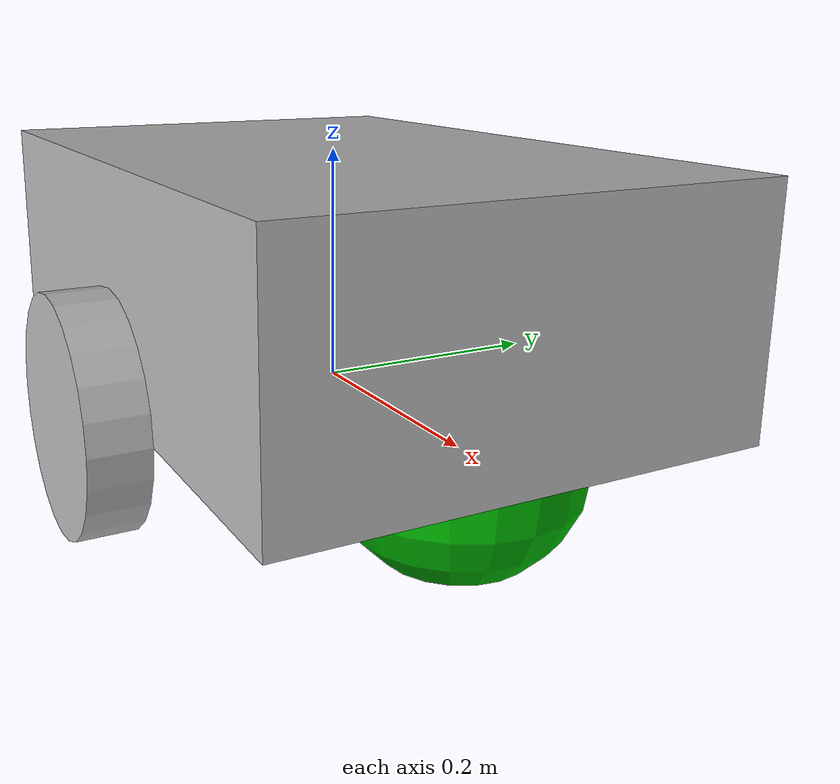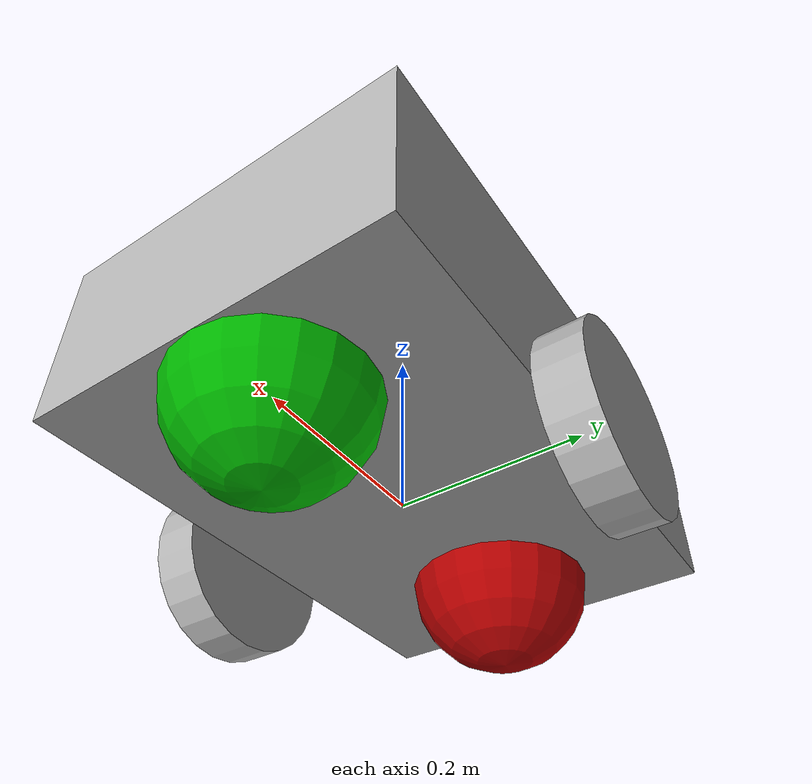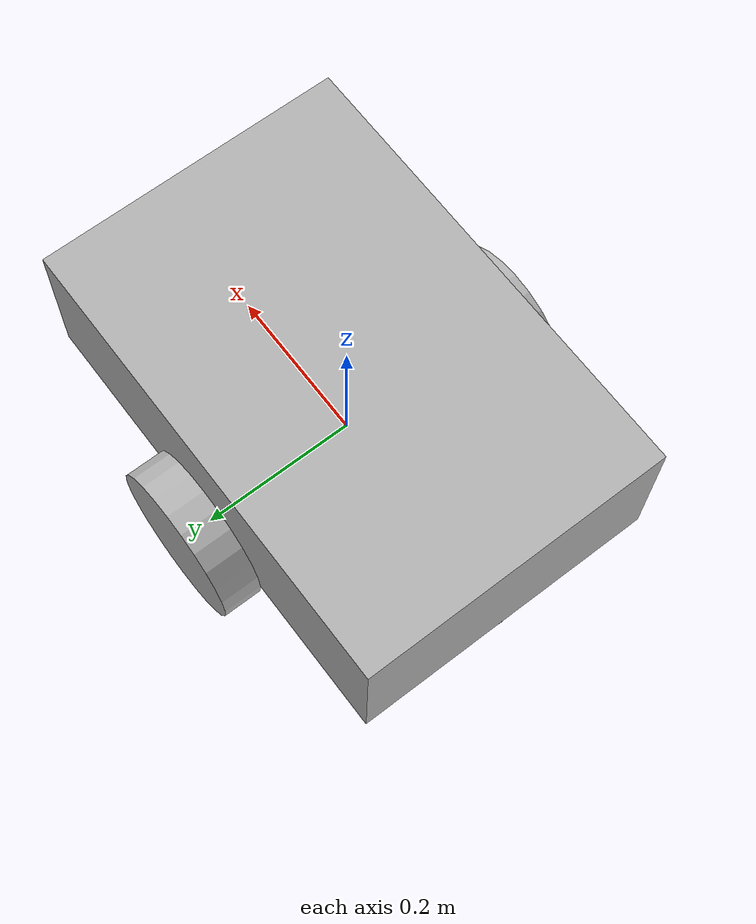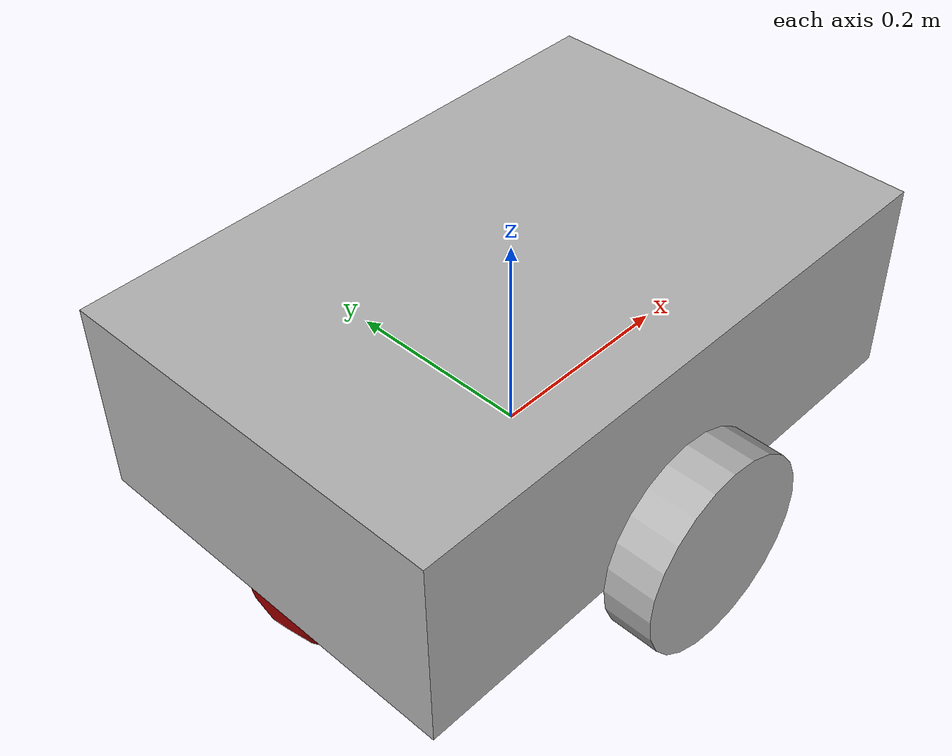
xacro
<?xml version="1.0"?>
<robot xmlns:xacro="http://www.ros.org/wiki/xacro">

    <xacro:include filename="inertial_macros.xacro"/>

    <material name="grey">
        <color rgba="0.7 0.7 0.7 1"/>
    </material>

    <material name="green">
        <color rgba="0 0.7 0 1"/>
    </material>

    <material name="white">
        <color rgba="1 1 1 1"/>
    </material>

    <material name="black">
        <color rgba="0 0 0 1"/>
    </material>

    <material name="red">
        <color rgba="0.7 0 0 1"/>
    </material>

    <link name="base_link">

    </link>

    <link name="chassis_link">
         <visual>
            <geometry>
                <box size="0.6 0.4 0.2"/>
            </geometry>
            <origin xyz = "0 0 0.1" rpy="0 0 0" />
            <material name="grey"/>
        </visual>

        <collision>
            <geometry>
                <box size="0.6 0.4 0.2"/>
            </geometry>
            <origin xyz = "0 0 0.1" rpy="0 0 0" />
        </collision>

        <xacro:inertial_box mass="3.0" x = "0.6" y = "0.4" z = "0.2">
            <origin xyz="0 0 0.1 " rpy ="0 0 0"/>
        </xacro:inertial_box>
    </link>

      <link name ="left_wheel">
        <visual>
            <geometry>
                <cylinder radius="0.1" length="0.05"/>
            </geometry>
            <origin xyz="0 0 0" rpy="1.57 0 0"/>
            <material name="grey"/>
        </visual>

        <collision>
            <geometry>
                <sphere radius="0.1"/>
            </geometry>
            <origin xyz="0 0 0" rpy="1.57 0 0"/>

        </collision>

         <xacro:inertial_cylinder mass="0.05" length="0.05" radius="1.0">
            <origin xyz="0 0 0 " rpy ="0 0 0"/>
        </xacro:inertial_cylinder>

    </link>

    <link name ="right_wheel">
        <visual>
            <geometry>
                <cylinder radius="0.1" length="0.05"/>
            </geometry>
            <origin xyz="0 0 0" rpy="1.57 0 0"/>
            <material name="grey"/>
        </visual>

        <collision>
            <geometry>
                <sphere radius="0.1"/>
            </geometry>
            <origin xyz="0 0 0" rpy="1.57 0 0"/>

        </collision>

        <xacro:inertial_cylinder mass="0.05" length="0.05" radius="1.0">
            <origin xyz="0 0 0 " rpy ="0 0 0"/>
        </xacro:inertial_cylinder>

    </link>

    <link name="caster_wheel_1">
        <visual>
            <geometry>
                <sphere radius="0.1"/>
            </geometry>
            <origin xyz="0 0 0" rpy="0 0 0" />
            <material name="red"/>
        </visual>

        <collision>
            <geometry>
                <sphere radius="0.1"/>
            </geometry>
            <origin xyz="0 0 0" rpy="0 0 0" />

        </collision>

        <xacro:inertial_sphere mass="0.005" radius="1.0">
            <origin xyz="0 0 0 " rpy ="0 0 0"/>
        </xacro:inertial_sphere>

    </link>

     <link name="caster_wheel_2">
        <visual>
            <geometry>
                <sphere radius="0.1"/>
            </geometry>
            <origin xyz="0 0 0" rpy="0 0 0" />
            <material name="green"/>

        </visual>

        <collision>
            <geometry>
                <sphere radius="0.1"/>
            </geometry>
            <origin xyz="0 0 0" rpy="0 0 0" />

        </collision>

          <xacro:inertial_sphere mass="0.005" radius="1.0">
            <origin xyz="0 0 0 " rpy ="0 0 0"/>
          </xacro:inertial_sphere>

    </link>

    <joint name="chassis_joint" type="fixed">
        <parent link="base_link"/>
        <child link="chassis_link"/>
        <origin xyz="0 0 0"/>
    </joint>

  <joint name="left_wheel_joint" type="continuous">
        <parent link="base_link"/>
        <child link="left_wheel"/>
        <origin xyz="0 0.225 0" rpy ="0 0 0" />
        <axis xyz="0 1 0"/>
  </joint>

  <joint name="right_wheel_joint" type="continuous">
        <parent link="base_link"/>
        <child link="right_wheel"/>
        <origin xyz="0 -0.225 0" rpy ="0 0 0" />
        <axis xyz="0 1 0"/>
  </joint>

   <joint name="base_caster_wheel_1_joint" type="fixed">
        <parent link="chassis_link"/>
        <child link="caster_wheel_1"/>
        <origin xyz="-0.2 0 0" rpy="0 0 0"/>
    </joint>

     <joint name="base_caster_wheel_2_joint" type="fixed">
        <parent link="chassis_link"/>
        <child link="caster_wheel_2"/>
        <origin xyz="0.2 0 0" rpy="0 0 0"/>
    </joint>

    <gazebo reference="caster_wheel_1">
        <mu1 value="0"/>
        <mu2 value="0"/>
    </gazebo>

     <gazebo reference="caster_wheel_2">
        <mu1 value="0"/>
        <mu2 value="0"/>
    </gazebo>

</robot>
